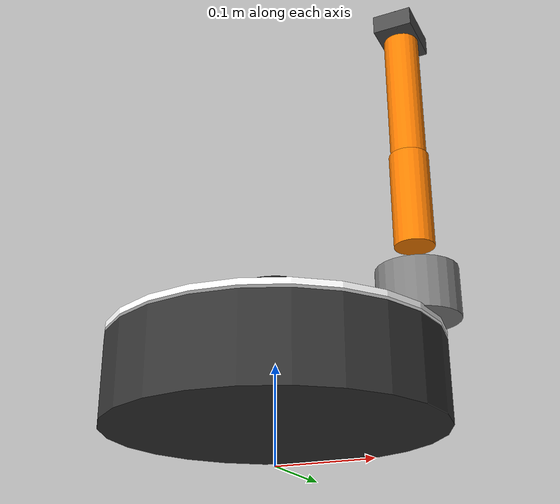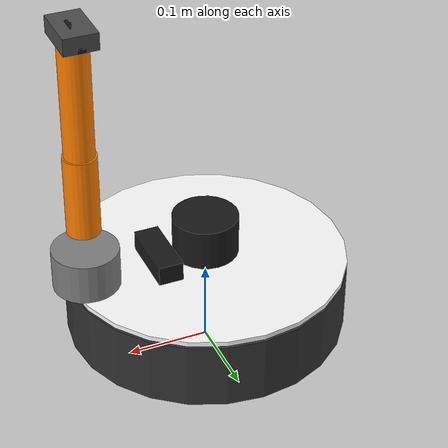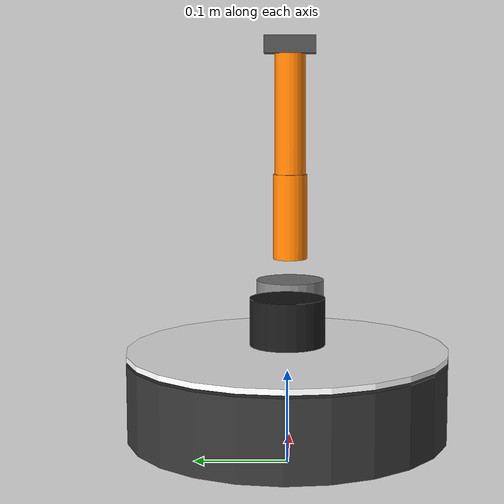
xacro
<?xml version="1.0"?>
<robot name="cofetch_robot" xmlns:xacro="http://ros.org/wiki/xacro">

  <link name="base_footprint">
    <visual>
      <origin xyz="0 0 0" rpy="0 0 0"/>
      <geometry>
        <box size="0.001 0.001 0.001"/>
      </geometry>
    </visual>
  </link>

  <joint name="base_footprint_joint" type="fixed">
    <parent link="base_footprint"/>
    <child link="base_link"/>
    <origin xyz="0 0 0.033" rpy="0 0 0"/>
  </joint>

  <link name="base_link">
    <visual>
      <origin xyz="0 0 0.0415" rpy="0 0 0"/>
      <geometry>
        <cylinder radius="0.17" length="0.083"/>
      </geometry>
      <material name="darkgrey">
        <color rgba="0.2 0.2 0.2 1"/>
      </material>
    </visual>
    <collision>
      <origin xyz="0 0 0.0415" rpy="0 0 0"/>
      <geometry>
        <cylinder radius="0.17" length="0.083"/>
      </geometry>
    </collision>
    <inertial>
      <mass value="3.5"/>
      <origin xyz="0 0 0.0415" rpy="0 0 0"/>
      <inertia ixx="0.01" ixy="0" ixz="0" iyy="0.01" iyz="0" izz="0.01"/>
    </inertial>
  </link>

  <gazebo reference="base_link">
    <material>Gazebo/DarkGrey</material>
  </gazebo>

  <link name="top_plate_link">
    <visual>
      <origin xyz="0 0 0.003" rpy="0 0 0"/>
      <geometry>
        <cylinder radius="0.17" length="0.006"/>
      </geometry>
      <material name="white">
        <color rgba="1 1 1 1"/>
      </material>
    </visual>
    <collision>
      <origin xyz="0 0 0.003" rpy="0 0 0"/>
      <geometry>
        <cylinder radius="0.17" length="0.006"/>
      </geometry>
    </collision>
    <inertial>
      <mass value="0.5"/>
      <origin xyz="0 0 0.003" rpy="0 0 0"/>
      <inertia ixx="0.001" ixy="0" ixz="0" iyy="0.001" iyz="0" izz="0.001"/>
    </inertial>
  </link>

  <gazebo reference="top_plate_link">
    <material>Gazebo/White</material>
  </gazebo>

  <joint name="top_plate_joint" type="fixed">
    <parent link="base_link"/>
    <child link="top_plate_link"/>
    <origin xyz="0 0 0.086" rpy="0 0 0"/>
  </joint>

  <link name="rplidar_link">
    <visual>
      <origin xyz="0 0 0" rpy="0 0 0"/>
      <geometry>
        <cylinder radius="0.04" length="0.05"/>
      </geometry>
      <material name="black">
        <color rgba="0.1 0.1 0.1 1"/>
      </material>
    </visual>
    <collision>
      <origin xyz="0 0 0" rpy="0 0 0"/>
      <geometry>
        <cylinder radius="0.04" length="0.05"/>
      </geometry>
    </collision>
    <inertial>
      <mass value="0.1"/>
      <origin xyz="0 0 0" rpy="0 0 0"/>
      <inertia ixx="0.0001" ixy="0" ixz="0" iyy="0.0001" iyz="0" izz="0.0001"/>
    </inertial>
  </link>

  <gazebo reference="rplidar_link">
    <material>Gazebo/Black</material>
  </gazebo>

  <joint name="rplidar_joint" type="fixed">
    <parent link="top_plate_link"/>
    <child link="rplidar_link"/>
    <origin xyz="0 0 0.035" rpy="0 0 0"/>
  </joint>

  <link name="camera_link">
    <visual>
      <origin xyz="0 0 0" rpy="0 0 0"/>
      <geometry>
        <box size="0.03 0.08 0.03"/>
      </geometry>
      <material name="black">
        <color rgba="0.1 0.1 0.1 1"/>
      </material>
    </visual>
    <collision>
      <origin xyz="0 0 0" rpy="0 0 0"/>
      <geometry>
        <box size="0.03 0.08 0.03"/>
      </geometry>
    </collision>
    <inertial>
      <mass value="0.05"/>
      <origin xyz="0 0 0" rpy="0 0 0"/>
      <inertia ixx="0.00001" ixy="0" ixz="0" iyy="0.00001" iyz="0" izz="0.00001"/>
    </inertial>
  </link>

  <gazebo reference="camera_link">
    <material>Gazebo/Black</material>
  </gazebo>

  <joint name="camera_joint" type="fixed">
    <parent link="top_plate_link"/>
    <child link="camera_link"/>
    <origin xyz="0.06 0 0.015" rpy="0 0 0"/>
  </joint>

  <link name="arm_base_link">
    <visual>
      <origin xyz="0 0 0" rpy="0 0 0"/>
      <geometry>
        <cylinder radius="0.04" length="0.05"/>
      </geometry>
      <material name="grey">
        <color rgba="0.5 0.5 0.5 1"/>
      </material>
    </visual>
    <collision>
      <origin xyz="0 0 0" rpy="0 0 0"/>
      <geometry>
        <cylinder radius="0.04" length="0.05"/>
      </geometry>
    </collision>
    <inertial>
      <mass value="0.5"/>
      <origin xyz="0 0 0" rpy="0 0 0"/>
      <inertia ixx="0.001" ixy="0" ixz="0" iyy="0.001" iyz="0" izz="0.001"/>
    </inertial>
  </link>

  <gazebo reference="arm_base_link">
    <material>Gazebo/Grey</material>
  </gazebo>

  <joint name="arm_base_joint" type="fixed">
    <parent link="top_plate_link"/>
    <child link="arm_base_link"/>
    <origin xyz="0.15 0 0.03" rpy="0 0 0"/>
  </joint>

  <link name="arm_link_1">
    <visual>
      <origin xyz="0 0 0.05" rpy="0 0 0"/>
      <geometry>
        <cylinder radius="0.02" length="0.1"/>
      </geometry>
      <material name="orange">
        <color rgba="1.0 0.5 0.0 1"/>
      </material>
    </visual>
    <collision>
      <origin xyz="0 0 0.05" rpy="0 0 0"/>
      <geometry>
        <cylinder radius="0.02" length="0.1"/>
      </geometry>
    </collision>
    <inertial>
      <mass value="0.3"/>
      <origin xyz="0 0 0.05" rpy="0 0 0"/>
      <inertia ixx="0.001" ixy="0" ixz="0" iyy="0.001" iyz="0" izz="0.001"/>
    </inertial>
  </link>

  <gazebo reference="arm_link_1">
    <material>Gazebo/Orange</material>
  </gazebo>

  <joint name="arm_joint_1" type="revolute">
    <parent link="arm_base_link"/>
    <child link="arm_link_1"/>
    <origin xyz="0 0 0.05" rpy="0 0 0"/>
    <axis xyz="0 0 1"/>
    <limit lower="-3.14159" upper="3.14159" effort="100" velocity="1.0"/>
  </joint>

  <link name="arm_link_2">
    <visual>
      <origin xyz="0 0 0.075" rpy="0 0 0"/>
      <geometry>
        <cylinder radius="0.018" length="0.15"/>
      </geometry>
      <material name="orange">
        <color rgba="1.0 0.5 0.0 1"/>
      </material>
    </visual>
    <collision>
      <origin xyz="0 0 0.075" rpy="0 0 0"/>
      <geometry>
        <cylinder radius="0.018" length="0.15"/>
      </geometry>
    </collision>
    <inertial>
      <mass value="0.2"/>
      <origin xyz="0 0 0.075" rpy="0 0 0"/>
      <inertia ixx="0.0005" ixy="0" ixz="0" iyy="0.0005" iyz="0" izz="0.0005"/>
    </inertial>
  </link>

  <gazebo reference="arm_link_2">
    <material>Gazebo/Orange</material>
  </gazebo>

  <joint name="arm_joint_2" type="revolute">
    <parent link="arm_link_1"/>
    <child link="arm_link_2"/>
    <origin xyz="0 0 0.1" rpy="0 0 0"/>
    <axis xyz="0 1 0"/>
    <limit lower="-1.5708" upper="1.5708" effort="100" velocity="1.0"/>
  </joint>

  <link name="gripper_base_link">
    <visual>
      <origin xyz="0 0 0" rpy="0 0 0"/>
      <geometry>
        <box size="0.04 0.06 0.02"/>
      </geometry>
      <material name="darkgrey">
        <color rgba="0.3 0.3 0.3 1"/>
      </material>
    </visual>
    <collision>
      <origin xyz="0 0 0" rpy="0 0 0"/>
      <geometry>
        <box size="0.04 0.06 0.02"/>
      </geometry>
    </collision>
    <inertial>
      <mass value="0.1"/>
      <origin xyz="0 0 0" rpy="0 0 0"/>
      <inertia ixx="0.0001" ixy="0" ixz="0" iyy="0.0001" iyz="0" izz="0.0001"/>
    </inertial>
  </link>

  <gazebo reference="gripper_base_link">
    <material>Gazebo/DarkGrey</material>
  </gazebo>

  <joint name="gripper_base_joint" type="fixed">
    <parent link="arm_link_2"/>
    <child link="gripper_base_link"/>
    <origin xyz="0 0 0.15" rpy="0 0 0"/>
  </joint>

  <link name="gripper_left_link">
    <visual>
      <origin xyz="0 0.015 0" rpy="0 0 0"/>
      <geometry>
        <box size="0.01 0.03 0.02"/>
      </geometry>
      <material name="black">
        <color rgba="0.1 0.1 0.1 1"/>
      </material>
    </visual>
    <collision>
      <origin xyz="0 0.015 0" rpy="0 0 0"/>
      <geometry>
        <box size="0.01 0.03 0.02"/>
      </geometry>
    </collision>
    <inertial>
      <mass value="0.02"/>
      <origin xyz="0 0.015 0" rpy="0 0 0"/>
      <inertia ixx="0.00001" ixy="0" ixz="0" iyy="0.00001" iyz="0" izz="0.00001"/>
    </inertial>
  </link>

  <gazebo reference="gripper_left_link">
    <material>Gazebo/Black</material>
  </gazebo>

  <joint name="gripper_left_joint" type="prismatic">
    <parent link="gripper_base_link"/>
    <child link="gripper_left_link"/>
    <origin xyz="0 0 0" rpy="0 0 0"/>
    <axis xyz="0 1 0"/>
    <limit lower="0" upper="0.03" effort="10" velocity="0.5"/>
  </joint>

  <link name="gripper_right_link">
    <visual>
      <origin xyz="0 -0.015 0" rpy="0 0 0"/>
      <geometry>
        <box size="0.01 0.03 0.02"/>
      </geometry>
      <material name="black">
        <color rgba="0.1 0.1 0.1 1"/>
      </material>
    </visual>
    <collision>
      <origin xyz="0 -0.015 0" rpy="0 0 0"/>
      <geometry>
        <box size="0.01 0.03 0.02"/>
      </geometry>
    </collision>
    <inertial>
      <mass value="0.02"/>
      <origin xyz="0 -0.015 0" rpy="0 0 0"/>
      <inertia ixx="0.00001" ixy="0" ixz="0" iyy="0.00001" iyz="0" izz="0.00001"/>
    </inertial>
  </link>

  <gazebo reference="gripper_right_link">
    <material>Gazebo/Black</material>
  </gazebo>

  <joint name="gripper_right_joint" type="prismatic">
    <parent link="gripper_base_link"/>
    <child link="gripper_right_link"/>
    <origin xyz="0 0 0" rpy="0 0 0"/>
    <axis xyz="0 -1 0"/>
    <limit lower="0" upper="0.03" effort="10" velocity="0.5"/>
  </joint>

  <link name="gripper_tip_link">
    <visual>
      <origin xyz="0 0 -0.015" rpy="0 0 0"/>
      <geometry>
        <sphere radius="0.01"/>
      </geometry>
      <material name="blue">
        <color rgba="0.0 0.0 1.0 1"/>
      </material>
    </visual>
    <collision>
      <origin xyz="0 0 -0.015" rpy="0 0 0"/>
      <geometry>
        <sphere radius="0.01"/>
      </geometry>
    </collision>
    <inertial>
      <mass value="0.01"/>
      <origin xyz="0 0 -0.015" rpy="0 0 0"/>
      <inertia ixx="0.00001" ixy="0" ixz="0" iyy="0.00001" iyz="0" izz="0.00001"/>
    </inertial>
  </link>

  <gazebo reference="gripper_tip_link">
    <material>Gazebo/Blue</material>
  </gazebo>

  <joint name="gripper_tip_joint" type="fixed">
    <parent link="gripper_base_link"/>
    <child link="gripper_tip_link"/>
    <origin xyz="0 0 0" rpy="0 0 0"/>
  </joint>

</robot>
